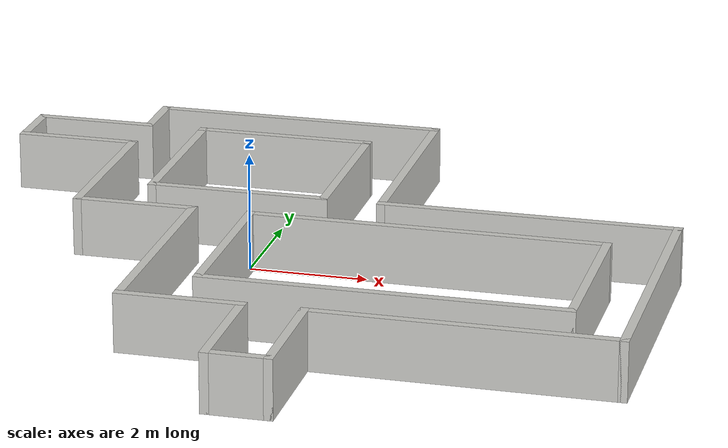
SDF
<?xml version='1.0'?>
<sdf version='1.6'>
  <model name='thesis_model'>
    <pose frame=''>1 -0.499922 0 0 -0 0</pose>
    <link name='Wall_0'>
      <collision name='Wall_0_Collision'>
        <geometry>
          <box>
            <size>1.15 0.15 1</size>
          </box>
        </geometry>
        <pose frame=''>0 0 0.5 0 -0 0</pose>
      </collision>
      <visual name='Wall_0_Visual'>
        <pose frame=''>0 0 0.5 0 -0 0</pose>
        <geometry>
          <box>
            <size>1.15 0.15 1</size>
          </box>
        </geometry>
        <material>
          <script>
            <uri>file://media/materials/scripts/gazebo.material</uri>
            <name>Gazebo/CeilingTiled</name>
          </script>
          <ambient>1 1 1 1</ambient>
        </material>
        <meta>
          <layer>0</layer>
        </meta>
      </visual>
      <pose frame=''>-6 3.99992 0 0 0 -1.5708</pose>
    </link>
    <link name='Wall_10'>
      <collision name='Wall_10_Collision'>
        <geometry>
          <box>
            <size>5.15 0.15 1</size>
          </box>
        </geometry>
        <pose frame=''>0 0 0.5 0 -0 0</pose>
      </collision>
      <visual name='Wall_10_Visual'>
        <pose frame=''>0 0 0.5 0 -0 0</pose>
        <geometry>
          <box>
            <size>5.15 0.15 1</size>
          </box>
        </geometry>
        <material>
          <script>
            <uri>file://media/materials/scripts/gazebo.material</uri>
            <name>Gazebo/CeilingTiled</name>
          </script>
          <ambient>1 1 1 1</ambient>
        </material>
        <meta>
          <layer>0</layer>
        </meta>
      </visual>
      <pose frame=''>-1.5 5.49992 0 0 -0 0</pose>
    </link>
    <link name='Wall_11'>
      <collision name='Wall_11_Collision'>
        <geometry>
          <box>
            <size>4.15031 0.15 1</size>
          </box>
        </geometry>
        <pose frame=''>0 0 0.5 0 -0 0</pose>
      </collision>
      <visual name='Wall_11_Visual'>
        <pose frame=''>0 0 0.5 0 -0 0</pose>
        <geometry>
          <box>
            <size>4.15031 0.15 1</size>
          </box>
        </geometry>
        <material>
          <script>
            <uri>file://media/materials/scripts/gazebo.material</uri>
            <name>Gazebo/CeilingTiled</name>
          </script>
          <ambient>1 1 1 1</ambient>
        </material>
        <meta>
          <layer>0</layer>
        </meta>
      </visual>
      <pose frame=''>1 3.49992 0 0 0 -1.5708</pose>
    </link>
    <link name='Wall_12'>
      <collision name='Wall_12_Collision'>
        <geometry>
          <box>
            <size>5.15 0.15 1</size>
          </box>
        </geometry>
        <pose frame=''>0 0 0.5 0 -0 0</pose>
      </collision>
      <visual name='Wall_12_Visual'>
        <pose frame=''>0 0 0.5 0 -0 0</pose>
        <geometry>
          <box>
            <size>5.15 0.15 1</size>
          </box>
        </geometry>
        <material>
          <script>
            <uri>file://media/materials/scripts/gazebo.material</uri>
            <name>Gazebo/CeilingTiled</name>
          </script>
          <ambient>1 1 1 1</ambient>
        </material>
        <meta>
          <layer>0</layer>
        </meta>
      </visual>
      <pose frame=''>3.5 1.49992 0 0 -0 0</pose>
    </link>
    <link name='Wall_14'>
      <collision name='Wall_14_Collision'>
        <geometry>
          <box>
            <size>3.15 0.15 1</size>
          </box>
        </geometry>
        <pose frame=''>0 0 0.5 0 -0 0</pose>
      </collision>
      <visual name='Wall_14_Visual'>
        <pose frame=''>0 0 0.5 0 -0 0</pose>
        <geometry>
          <box>
            <size>3.15 0.15 1</size>
          </box>
        </geometry>
        <material>
          <script>
            <uri>file://media/materials/scripts/gazebo.material</uri>
            <name>Gazebo/CeilingTiled</name>
          </script>
          <ambient>1 1 1 1</ambient>
        </material>
        <meta>
          <layer>0</layer>
        </meta>
      </visual>
      <pose frame=''>-3 2.99992 0 0 0 -1.5708</pose>
    </link>
    <link name='Wall_15'>
      <collision name='Wall_15_Collision'>
        <geometry>
          <box>
            <size>3.15 0.15 1</size>
          </box>
        </geometry>
        <pose frame=''>0 0 0.5 0 -0 0</pose>
      </collision>
      <visual name='Wall_15_Visual'>
        <pose frame=''>0 0 0.5 0 -0 0</pose>
        <geometry>
          <box>
            <size>3.15 0.15 1</size>
          </box>
        </geometry>
        <material>
          <script>
            <uri>file://media/materials/scripts/gazebo.material</uri>
            <name>Gazebo/CeilingTiled</name>
          </script>
          <ambient>1 1 1 1</ambient>
        </material>
        <meta>
          <layer>0</layer>
        </meta>
      </visual>
      <pose frame=''>-1.5 1.49992 0 0 -0 0</pose>
    </link>
    <link name='Wall_16'>
      <collision name='Wall_16_Collision'>
        <geometry>
          <box>
            <size>3.15 0.15 1</size>
          </box>
        </geometry>
        <pose frame=''>0 0 0.5 0 -0 0</pose>
      </collision>
      <visual name='Wall_16_Visual'>
        <pose frame=''>0 0 0.5 0 -0 0</pose>
        <geometry>
          <box>
            <size>3.15 0.15 1</size>
          </box>
        </geometry>
        <material>
          <script>
            <uri>file://media/materials/scripts/gazebo.material</uri>
            <name>Gazebo/CeilingTiled</name>
          </script>
          <ambient>1 1 1 1</ambient>
        </material>
        <meta>
          <layer>0</layer>
        </meta>
      </visual>
      <pose frame=''>0 2.99992 0 0 -0 1.5708</pose>
    </link>
    <link name='Wall_17'>
      <collision name='Wall_17_Collision'>
        <geometry>
          <box>
            <size>3.15 0.15 1</size>
          </box>
        </geometry>
        <pose frame=''>0 0 0.5 0 -0 0</pose>
      </collision>
      <visual name='Wall_17_Visual'>
        <pose frame=''>0 0 0.5 0 -0 0</pose>
        <geometry>
          <box>
            <size>3.15 0.15 1</size>
          </box>
        </geometry>
        <material>
          <script>
            <uri>file://media/materials/scripts/gazebo.material</uri>
            <name>Gazebo/CeilingTiled</name>
          </script>
          <ambient>1 1 1 1</ambient>
        </material>
        <meta>
          <layer>0</layer>
        </meta>
      </visual>
      <pose frame=''>-1.5 4.49992 0 0 -0 3.14159</pose>
    </link>
    <link name='Wall_19'>
      <collision name='Wall_19_Collision'>
        <geometry>
          <box>
            <size>4.15 0.15 1</size>
          </box>
        </geometry>
        <pose frame=''>0 0 0.5 0 -0 0</pose>
      </collision>
      <visual name='Wall_19_Visual'>
        <pose frame=''>0 0 0.5 0 -0 0</pose>
        <geometry>
          <box>
            <size>4.15 0.15 1</size>
          </box>
        </geometry>
        <material>
          <script>
            <uri>file://media/materials/scripts/gazebo.material</uri>
            <name>Gazebo/CeilingTiled</name>
          </script>
          <ambient>1 1 1 1</ambient>
        </material>
        <meta>
          <layer>0</layer>
        </meta>
      </visual>
      <pose frame=''>-2 -1.50008 0 0 0 -1.5708</pose>
    </link>
    <link name='Wall_2'>
      <collision name='Wall_2_Collision'>
        <geometry>
          <box>
            <size>2.15 0.15 1</size>
          </box>
        </geometry>
        <pose frame=''>0 0 0.5 0 -0 0</pose>
      </collision>
      <visual name='Wall_2_Visual'>
        <pose frame=''>0 0 0.5 0 -0 0</pose>
        <geometry>
          <box>
            <size>2.15 0.15 1</size>
          </box>
        </geometry>
        <material>
          <script>
            <uri>file://media/materials/scripts/gazebo.material</uri>
            <name>Gazebo/CeilingTiled</name>
          </script>
          <ambient>1 1 1 1</ambient>
        </material>
        <meta>
          <layer>0</layer>
        </meta>
      </visual>
      <pose frame=''>-5 3.49992 0 0 -0 0</pose>
    </link>
    <link name='Wall_20'>
      <collision name='Wall_20_Collision'>
        <geometry>
          <box>
            <size>2.15 0.15 1</size>
          </box>
        </geometry>
        <pose frame=''>0 0 0.5 0 -0 0</pose>
      </collision>
      <visual name='Wall_20_Visual'>
        <pose frame=''>0 0 0.5 0 -0 0</pose>
        <geometry>
          <box>
            <size>2.15 0.15 1</size>
          </box>
        </geometry>
        <material>
          <script>
            <uri>file://media/materials/scripts/gazebo.material</uri>
            <name>Gazebo/CeilingTiled</name>
          </script>
          <ambient>1 1 1 1</ambient>
        </material>
        <meta>
          <layer>0</layer>
        </meta>
      </visual>
      <pose frame=''>-1 -3.50008 0 0 -0 0</pose>
    </link>
    <link name='Wall_21'>
      <collision name='Wall_21_Collision'>
        <geometry>
          <box>
            <size>2.15 0.15 1</size>
          </box>
        </geometry>
        <pose frame=''>0 0 0.5 0 -0 0</pose>
      </collision>
      <visual name='Wall_21_Visual'>
        <pose frame=''>0 0 0.5 0 -0 0</pose>
        <geometry>
          <box>
            <size>2.15 0.15 1</size>
          </box>
        </geometry>
        <material>
          <script>
            <uri>file://media/materials/scripts/gazebo.material</uri>
            <name>Gazebo/CeilingTiled</name>
          </script>
          <ambient>1 1 1 1</ambient>
        </material>
        <meta>
          <layer>0</layer>
        </meta>
      </visual>
      <pose frame=''>0 -4.50008 0 0 0 -1.5708</pose>
    </link>
    <link name='Wall_22'>
      <collision name='Wall_22_Collision'>
        <geometry>
          <box>
            <size>1.15 0.15 1</size>
          </box>
        </geometry>
        <pose frame=''>0 0 0.5 0 -0 0</pose>
      </collision>
      <visual name='Wall_22_Visual'>
        <pose frame=''>0 0 0.5 0 -0 0</pose>
        <geometry>
          <box>
            <size>1.15 0.15 1</size>
          </box>
        </geometry>
        <material>
          <script>
            <uri>file://media/materials/scripts/gazebo.material</uri>
            <name>Gazebo/CeilingTiled</name>
          </script>
          <ambient>1 1 1 1</ambient>
        </material>
        <meta>
          <layer>0</layer>
        </meta>
      </visual>
      <pose frame=''>0.5 -5.50008 0 0 -0 0</pose>
    </link>
    <link name='Wall_23'>
      <collision name='Wall_23_Collision'>
        <geometry>
          <box>
            <size>2.15 0.15 1</size>
          </box>
        </geometry>
        <pose frame=''>0 0 0.5 0 -0 0</pose>
      </collision>
      <visual name='Wall_23_Visual'>
        <pose frame=''>0 0 0.5 0 -0 0</pose>
        <geometry>
          <box>
            <size>2.15 0.15 1</size>
          </box>
        </geometry>
        <material>
          <script>
            <uri>file://media/materials/scripts/gazebo.material</uri>
            <name>Gazebo/CeilingTiled</name>
          </script>
          <ambient>1 1 1 1</ambient>
        </material>
        <meta>
          <layer>0</layer>
        </meta>
      </visual>
      <pose frame=''>1 -4.50008 0 0 -0 1.5708</pose>
    </link>
    <link name='Wall_24'>
      <collision name='Wall_24_Collision'>
        <geometry>
          <box>
            <size>5.15 0.15 1</size>
          </box>
        </geometry>
        <pose frame=''>0 0 0.5 0 -0 0</pose>
      </collision>
      <visual name='Wall_24_Visual'>
        <pose frame=''>0 0 0.5 0 -0 0</pose>
        <geometry>
          <box>
            <size>5.15 0.15 1</size>
          </box>
        </geometry>
        <material>
          <script>
            <uri>file://media/materials/scripts/gazebo.material</uri>
            <name>Gazebo/CeilingTiled</name>
          </script>
          <ambient>1 1 1 1</ambient>
        </material>
        <meta>
          <layer>0</layer>
        </meta>
      </visual>
      <pose frame=''>3.5 -3.50008 0 0 -0 0</pose>
    </link>
    <link name='Wall_25'>
      <collision name='Wall_25_Collision'>
        <geometry>
          <box>
            <size>5.15 0.15 1</size>
          </box>
        </geometry>
        <pose frame=''>0 0 0.5 0 -0 0</pose>
      </collision>
      <visual name='Wall_25_Visual'>
        <pose frame=''>0 0 0.5 0 -0 0</pose>
        <geometry>
          <box>
            <size>5.15 0.15 1</size>
          </box>
        </geometry>
        <material>
          <script>
            <uri>file://media/materials/scripts/gazebo.material</uri>
            <name>Gazebo/CeilingTiled</name>
          </script>
          <ambient>1 1 1 1</ambient>
        </material>
        <meta>
          <layer>0</layer>
        </meta>
      </visual>
      <pose frame=''>6 -1.00008 0 0 -0 1.5708</pose>
    </link>
    <link name='Wall_27'>
      <collision name='Wall_27_Collision'>
        <geometry>
          <box>
            <size>3.15 0.15 1</size>
          </box>
        </geometry>
        <pose frame=''>0 0 0.5 0 -0 0</pose>
      </collision>
      <visual name='Wall_27_Visual'>
        <pose frame=''>0 0 0.5 0 -0 0</pose>
        <geometry>
          <box>
            <size>3.15 0.15 1</size>
          </box>
        </geometry>
        <material>
          <script>
            <uri>file://media/materials/scripts/gazebo.material</uri>
            <name>Gazebo/CeilingTiled</name>
          </script>
          <ambient>1 1 1 1</ambient>
        </material>
        <meta>
          <layer>0</layer>
        </meta>
      </visual>
      <pose frame=''>-1 -1.00008 0 0 0 -1.5708</pose>
    </link>
    <link name='Wall_28'>
      <collision name='Wall_28_Collision'>
        <geometry>
          <box>
            <size>6.15 0.15 1</size>
          </box>
        </geometry>
        <pose frame=''>0 0 0.5 0 -0 0</pose>
      </collision>
      <visual name='Wall_28_Visual'>
        <pose frame=''>0 0 0.5 0 -0 0</pose>
        <geometry>
          <box>
            <size>6.15 0.15 1</size>
          </box>
        </geometry>
        <material>
          <script>
            <uri>file://media/materials/scripts/gazebo.material</uri>
            <name>Gazebo/CeilingTiled</name>
          </script>
          <ambient>1 1 1 1</ambient>
        </material>
        <meta>
          <layer>0</layer>
        </meta>
      </visual>
      <pose frame=''>2 -2.50008 0 0 -0 0</pose>
    </link>
    <link name='Wall_29'>
      <collision name='Wall_29_Collision'>
        <geometry>
          <box>
            <size>3.15 0.15 1</size>
          </box>
        </geometry>
        <pose frame=''>0 0 0.5 0 -0 0</pose>
      </collision>
      <visual name='Wall_29_Visual'>
        <pose frame=''>0 0 0.5 0 -0 0</pose>
        <geometry>
          <box>
            <size>3.15 0.15 1</size>
          </box>
        </geometry>
        <material>
          <script>
            <uri>file://media/materials/scripts/gazebo.material</uri>
            <name>Gazebo/CeilingTiled</name>
          </script>
          <ambient>1 1 1 1</ambient>
        </material>
        <meta>
          <layer>0</layer>
        </meta>
      </visual>
      <pose frame=''>5 -1.00008 0 0 -0 1.5708</pose>
    </link>
    <link name='Wall_30'>
      <collision name='Wall_30_Collision'>
        <geometry>
          <box>
            <size>6.15 0.15 1</size>
          </box>
        </geometry>
        <pose frame=''>0 0 0.5 0 -0 0</pose>
      </collision>
      <visual name='Wall_30_Visual'>
        <pose frame=''>0 0 0.5 0 -0 0</pose>
        <geometry>
          <box>
            <size>6.15 0.15 1</size>
          </box>
        </geometry>
        <material>
          <script>
            <uri>file://media/materials/scripts/gazebo.material</uri>
            <name>Gazebo/CeilingTiled</name>
          </script>
          <ambient>1 1 1 1</ambient>
        </material>
        <meta>
          <layer>0</layer>
        </meta>
      </visual>
      <pose frame=''>2 0.499922 0 0 -0 3.14159</pose>
    </link>
    <link name='Wall_4'>
      <collision name='Wall_4_Collision'>
        <geometry>
          <box>
            <size>3.15 0.15 1</size>
          </box>
        </geometry>
        <pose frame=''>0 0 0.5 0 -0 0</pose>
      </collision>
      <visual name='Wall_4_Visual'>
        <pose frame=''>0 0 0.5 0 -0 0</pose>
        <geometry>
          <box>
            <size>3.15 0.15 1</size>
          </box>
        </geometry>
        <material>
          <script>
            <uri>file://media/materials/scripts/gazebo.material</uri>
            <name>Gazebo/CeilingTiled</name>
          </script>
          <ambient>1 1 1 1</ambient>
        </material>
        <meta>
          <layer>0</layer>
        </meta>
      </visual>
      <pose frame=''>-4 1.99992 0 0 0 -1.5708</pose>
    </link>
    <link name='Wall_6'>
      <collision name='Wall_6_Collision'>
        <geometry>
          <box>
            <size>2.15 0.15 1</size>
          </box>
        </geometry>
        <pose frame=''>0 0 0.5 0 -0 0</pose>
      </collision>
      <visual name='Wall_6_Visual'>
        <pose frame=''>0 0 0.5 0 -0 0</pose>
        <geometry>
          <box>
            <size>2.15 0.15 1</size>
          </box>
        </geometry>
        <material>
          <script>
            <uri>file://media/materials/scripts/gazebo.material</uri>
            <name>Gazebo/CeilingTiled</name>
          </script>
          <ambient>1 1 1 1</ambient>
        </material>
        <meta>
          <layer>0</layer>
        </meta>
      </visual>
      <pose frame=''>-3 0.499922 0 0 -0 0</pose>
    </link>
    <link name='Wall_8'>
      <collision name='Wall_8_Collision'>
        <geometry>
          <box>
            <size>2.15 0.15 1</size>
          </box>
        </geometry>
        <pose frame=''>0 0 0.5 0 -0 0</pose>
      </collision>
      <visual name='Wall_8_Visual'>
        <pose frame=''>0 0 0.5 0 -0 0</pose>
        <geometry>
          <box>
            <size>2.15 0.15 1</size>
          </box>
        </geometry>
        <material>
          <script>
            <uri>file://media/materials/scripts/gazebo.material</uri>
            <name>Gazebo/CeilingTiled</name>
          </script>
          <ambient>1 1 1 1</ambient>
        </material>
        <meta>
          <layer>0</layer>
        </meta>
      </visual>
      <pose frame=''>-5 4.49992 0 0 -0 0</pose>
    </link>
    <link name='Wall_9'>
      <collision name='Wall_9_Collision'>
        <geometry>
          <box>
            <size>1.15 0.15 1</size>
          </box>
        </geometry>
        <pose frame=''>0 0 0.5 0 -0 0</pose>
      </collision>
      <visual name='Wall_9_Visual'>
        <pose frame=''>0 0 0.5 0 -0 0</pose>
        <geometry>
          <box>
            <size>1.15 0.15 1</size>
          </box>
        </geometry>
        <material>
          <script>
            <uri>file://media/materials/scripts/gazebo.material</uri>
            <name>Gazebo/CeilingTiled</name>
          </script>
          <ambient>1 1 1 1</ambient>
        </material>
        <meta>
          <layer>0</layer>
        </meta>
      </visual>
      <pose frame=''>-4 4.99992 0 0 -0 1.5708</pose>
    </link>
    <static>1</static>
  </model>
</sdf>
